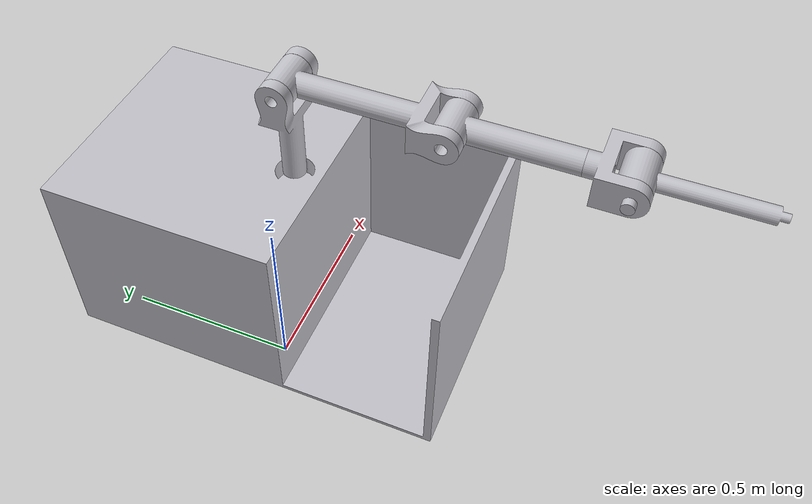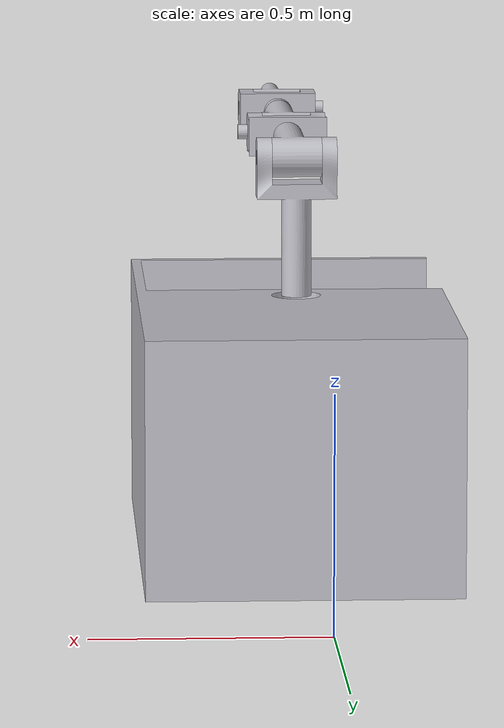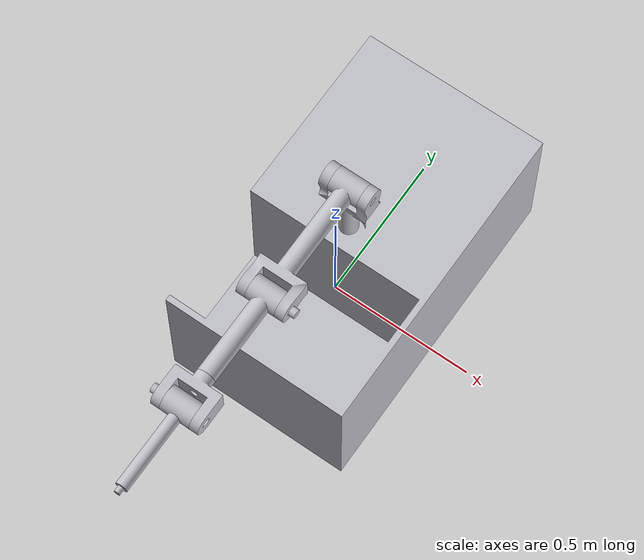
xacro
<?xml version="1.0" ?>
<robot name="arm" xmlns:xacro="http://www.ros.org/wiki/xacro">

<xacro:include filename="$(find arm_description)/urdf/materials.xacro" />
<xacro:include filename="$(find arm_description)/urdf/arm.trans" />
<xacro:include filename="$(find arm_description)/urdf/arm.gazebo" />
<link name="base_link">
  <inertial>
    <origin xyz="0.09186573896272435 0.1532477520366234 0.4377874269525966" rpy="0 0 0"/>
    <mass value="1636.3739744565894"/>
    <inertia ixx="122.622939" iyy="90.404506" izz="140.781728" ixy="4.459364" iyz="-2.366828" ixz="-0.085487"/>
  </inertial>
  <visual>
    <origin xyz="0 0 0" rpy="0 0 0"/>
    <geometry>
      <mesh filename="file://$(find arm_description)/meshes/base_link.stl" scale="0.001 0.001 0.001"/>
    </geometry>
    <material name="silver"/>
  </visual>
  <collision>
    <origin xyz="0 0 0" rpy="0 0 0"/>
    <geometry>
      <mesh filename="file://$(find arm_description)/meshes/base_link.stl" scale="0.001 0.001 0.001"/>
    </geometry>
  </collision>
</link>

<link name="shoulder_1">
  <inertial>
    <origin xyz="2.637181544529188e-07 -2.7982934619474875e-07 0.17822374504581118" rpy="0 0 0"/>
    <mass value="9.950988150450883"/>
    <inertia ixx="0.073831" iyy="0.088163" izz="0.021803" ixy="-0.0" iyz="0.0" ixz="0.0"/>
  </inertial>
  <visual>
    <origin xyz="-0.07609 0.044498 -0.696099" rpy="0 0 0"/>
    <geometry>
      <mesh filename="file://$(find arm_description)/meshes/shoulder_1.stl" scale="0.001 0.001 0.001"/>
    </geometry>
    <material name="silver"/>
  </visual>
  <collision>
    <origin xyz="-0.07609 0.044498 -0.696099" rpy="0 0 0"/>
    <geometry>
      <mesh filename="file://$(find arm_description)/meshes/shoulder_1.stl" scale="0.001 0.001 0.001"/>
    </geometry>
  </collision>
</link>

<link name="forearm_1">
  <inertial>
    <origin xyz="0.0006800464679361934 -0.19580877978424263 -2.7638884736447267e-08" rpy="0 0 0"/>
    <mass value="15.9214010466006"/>
    <inertia ixx="0.366386" iyy="0.028315" izz="0.383156" ixy="-0.002119" iyz="0.0" ixz="-0.0"/>
  </inertial>
  <visual>
    <origin xyz="-0.07609 0.044498 -0.976099" rpy="0 0 0"/>
    <geometry>
      <mesh filename="file://$(find arm_description)/meshes/forearm_1.stl" scale="0.001 0.001 0.001"/>
    </geometry>
    <material name="silver"/>
  </visual>
  <collision>
    <origin xyz="-0.07609 0.044498 -0.976099" rpy="0 0 0"/>
    <geometry>
      <mesh filename="file://$(find arm_description)/meshes/forearm_1.stl" scale="0.001 0.001 0.001"/>
    </geometry>
  </collision>
</link>

<link name="hand_1">
  <inertial>
    <origin xyz="0.0020797334823772218 -0.09682060370375006 -2.899267115274995e-08" rpy="0 0 0"/>
    <mass value="10.006462958116229"/>
    <inertia ixx="0.106233" iyy="0.009014" izz="0.109481" ixy="-0.002015" iyz="-0.0" ixz="-0.0"/>
  </inertial>
  <visual>
    <origin xyz="-0.07609 0.444498 -0.976099" rpy="0 0 0"/>
    <geometry>
      <mesh filename="file://$(find arm_description)/meshes/hand_1.stl" scale="0.001 0.001 0.001"/>
    </geometry>
    <material name="silver"/>
  </visual>
  <collision>
    <origin xyz="-0.07609 0.444498 -0.976099" rpy="0 0 0"/>
    <geometry>
      <mesh filename="file://$(find arm_description)/meshes/hand_1.stl" scale="0.001 0.001 0.001"/>
    </geometry>
  </collision>
</link>

<link name="fork__1__1">
  <inertial>
    <origin xyz="2.639346036725776e-07 -0.06732423545852884 -1.8723942840637164e-08" rpy="0 0 0"/>
    <mass value="6.082151308307771"/>
    <inertia ixx="0.010937" iyy="0.02152" izz="0.02606" ixy="-0.0" iyz="-0.0" ixz="0.0"/>
  </inertial>
  <visual>
    <origin xyz="-0.07609 0.734498 -0.976099" rpy="0 0 0"/>
    <geometry>
      <mesh filename="file://$(find arm_description)/meshes/fork__1__1.stl" scale="0.001 0.001 0.001"/>
    </geometry>
    <material name="silver"/>
  </visual>
  <collision>
    <origin xyz="-0.07609 0.734498 -0.976099" rpy="0 0 0"/>
    <geometry>
      <mesh filename="file://$(find arm_description)/meshes/fork__1__1.stl" scale="0.001 0.001 0.001"/>
    </geometry>
  </collision>
</link>

<link name="end_effector__1">
  <inertial>
    <origin xyz="0.046872575764868946 -0.05916247408180153 -1.5099832162412952e-08" rpy="0 0 0"/>
    <mass value="6.6528613461497175"/>
    <inertia ixx="0.056283" iyy="0.006915" izz="0.059529" ixy="0.001231" iyz="-0.0" ixz="-0.0"/>
  </inertial>
  <visual>
    <origin xyz="-0.02609 0.844498 -0.976099" rpy="0 0 0"/>
    <geometry>
      <mesh filename="file://$(find arm_description)/meshes/end_effector__1.stl" scale="0.001 0.001 0.001"/>
    </geometry>
    <material name="silver"/>
  </visual>
  <collision>
    <origin xyz="-0.02609 0.844498 -0.976099" rpy="0 0 0"/>
    <geometry>
      <mesh filename="file://$(find arm_description)/meshes/end_effector__1.stl" scale="0.001 0.001 0.001"/>
    </geometry>
  </collision>
</link>

<joint name="joint_1" type="continuous">
  <origin xyz="0.07609 -0.044498 0.696099" rpy="0 0 0"/>
  <parent link="base_link"/>
  <child link="shoulder_1"/>
  <axis xyz="0.0 0.0 1.0"/>
</joint>

<joint name="joint_2" type="continuous">
  <origin xyz="0.0 0.0 0.28" rpy="0 0 0"/>
  <parent link="shoulder_1"/>
  <child link="forearm_1"/>
  <axis xyz="1.0 0.0 -0.0"/>
</joint>

<joint name="joint_3" type="continuous">
  <origin xyz="0.0 -0.4 0.0" rpy="0 0 0"/>
  <parent link="forearm_1"/>
  <child link="hand_1"/>
  <axis xyz="1.0 0.0 -0.0"/>
</joint>

<joint name="joint_4" type="continuous">
  <origin xyz="0.0 -0.29 0.0" rpy="0 0 0"/>
  <parent link="hand_1"/>
  <child link="fork__1__1"/>
  <axis xyz="0.0 1.0 0.0"/>
</joint>

<joint name="joint_5" type="continuous">
  <origin xyz="-0.05 -0.11 0.0" rpy="0 0 0"/>
  <parent link="fork__1__1"/>
  <child link="end_effector__1"/>
  <axis xyz="1.0 -0.0 -0.0"/>
</joint>

</robot>

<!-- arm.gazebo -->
<robot name="arm" xmlns:xacro="http://www.ros.org/wiki/xacro" >

<xacro:property name="body_color" value="Gazebo/Silver" />

<gazebo>
  <plugin name="control" filename="libgazebo_ros_control.so"/>
</gazebo>
<gazebo reference="base_link">
  <material>${body_color}</material>
  <mu1>0.2</mu1>
  <mu2>0.2</mu2>
  <self_collide>true</self_collide>
  <gravity>true</gravity>
</gazebo>

<gazebo reference="shoulder_1">
  <material>${body_color}</material>
  <mu1>0.2</mu1>
  <mu2>0.2</mu2>
  <self_collide>true</self_collide>
</gazebo>

<gazebo reference="forearm_1">
  <material>${body_color}</material>
  <mu1>0.2</mu1>
  <mu2>0.2</mu2>
  <self_collide>true</self_collide>
</gazebo>

<gazebo reference="hand_1">
  <material>${body_color}</material>
  <mu1>0.2</mu1>
  <mu2>0.2</mu2>
  <self_collide>true</self_collide>
</gazebo>

<gazebo reference="fork__1__1">
  <material>${body_color}</material>
  <mu1>0.2</mu1>
  <mu2>0.2</mu2>
  <self_collide>true</self_collide>
</gazebo>

<gazebo reference="end_effector__1">
  <material>${body_color}</material>
  <mu1>0.2</mu1>
  <mu2>0.2</mu2>
  <self_collide>true</self_collide>
</gazebo>

</robot>
